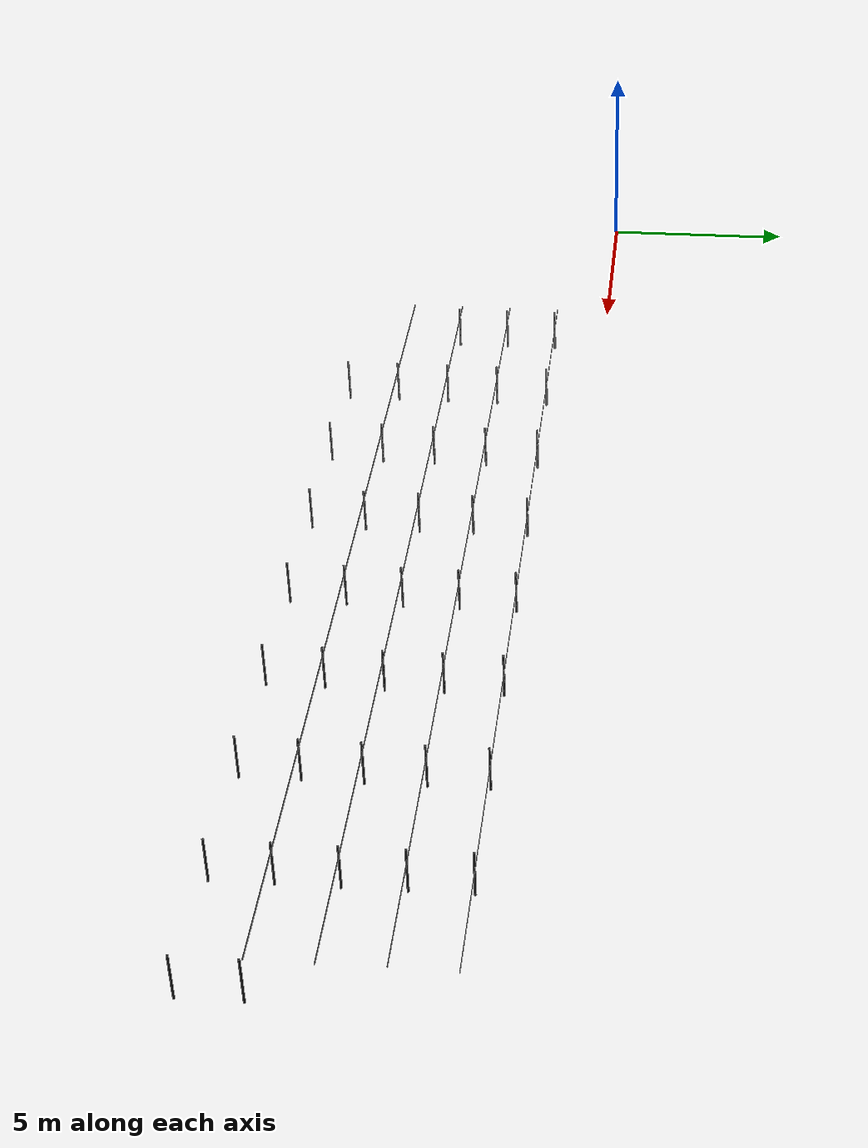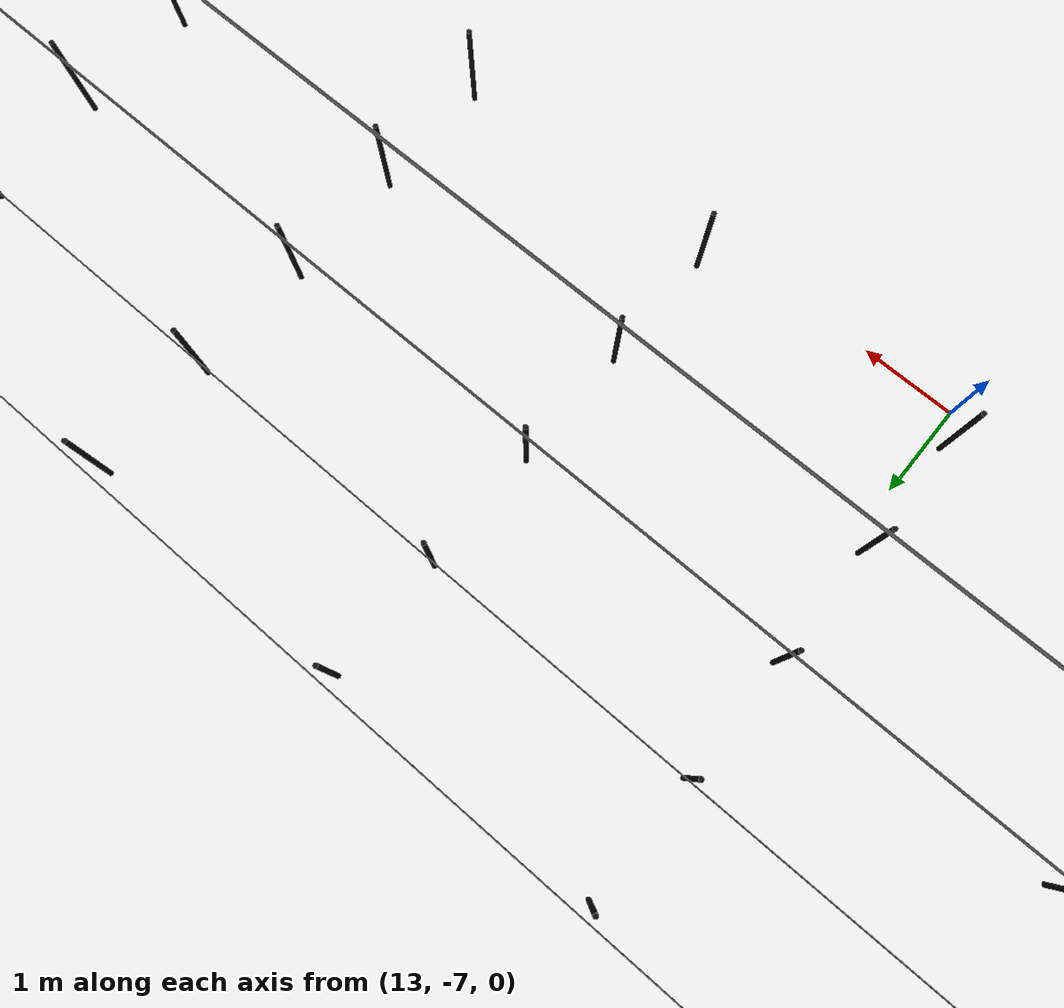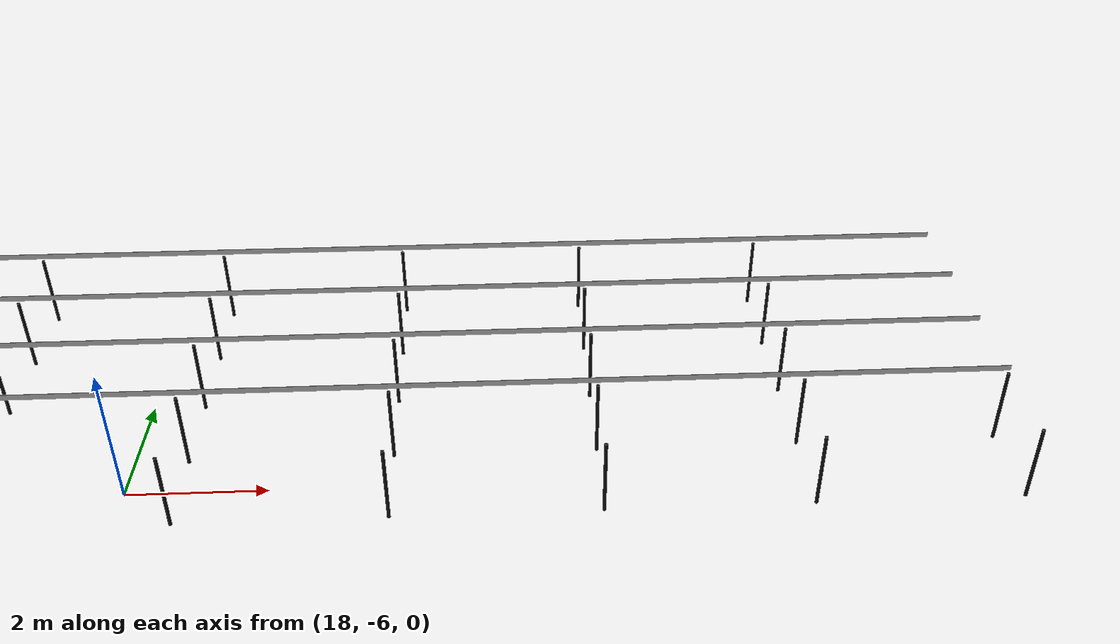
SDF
<sdf version="1.4">
 <world name="riseholme">
  <scene><shadows>1</shadows><sky><clouds><speed>12</speed></clouds></sky></scene>
  <model name="pole_2">
   <static>1</static>
   <pose>7.000 -4.000 0.575 0.0 0.0 0.0</pose>
   <link name="link">
    <collision name="collision">
     <geometry><cylinder><length>1.15</length><radius>0.025</radius></cylinder></geometry>
    </collision>
    <visual name="visual">
     <geometry><cylinder><length>1.15</length><radius>0.025</radius></cylinder></geometry>
     <material>
      <script><uri>file://media/materials/scripts/gazebo.material</uri><name>Gazebo/Chrome</name></script>
      <shader type="vertex"><normal_map>__default__</normal_map></shader>
      <emissive>0.1 0.1 0.1 1</emissive>
      <specular>0.01 0.01 0.01 1</specular>
      <ambient>0.5 0.5 0.5 1</ambient>
      <diffuse>0.05 0.05 0.05 1</diffuse>
     </material>
    </visual>
   </link>
  </model>
  <model name="pole_3">
   <static>1</static>
   <pose>7.000 -2.680 0.575 0.0 0.0 0.0</pose>
   <link name="link">
    <collision name="collision">
     <geometry><cylinder><length>1.15</length><radius>0.025</radius></cylinder></geometry>
    </collision>
    <visual name="visual">
     <geometry><cylinder><length>1.15</length><radius>0.025</radius></cylinder></geometry>
     <material>
      <script><uri>file://media/materials/scripts/gazebo.material</uri><name>Gazebo/Chrome</name></script>
      <shader type="vertex"><normal_map>__default__</normal_map></shader>
      <emissive>0.1 0.1 0.1 1</emissive>
      <specular>0.01 0.01 0.01 1</specular>
      <ambient>0.5 0.5 0.5 1</ambient>
      <diffuse>0.05 0.05 0.05 1</diffuse>
     </material>
    </visual>
   </link>
  </model>
  <model name="pole_4">
   <static>1</static>
   <pose>7.000 -1.360 0.575 0.0 0.0 0.0</pose>
   <link name="link">
    <collision name="collision">
     <geometry><cylinder><length>1.15</length><radius>0.025</radius></cylinder></geometry>
    </collision>
    <visual name="visual">
     <geometry><cylinder><length>1.15</length><radius>0.025</radius></cylinder></geometry>
     <material>
      <script><uri>file://media/materials/scripts/gazebo.material</uri><name>Gazebo/Chrome</name></script>
      <shader type="vertex"><normal_map>__default__</normal_map></shader>
      <emissive>0.1 0.1 0.1 1</emissive>
      <specular>0.01 0.01 0.01 1</specular>
      <ambient>0.5 0.5 0.5 1</ambient>
      <diffuse>0.05 0.05 0.05 1</diffuse>
     </material>
    </visual>
   </link>
  </model>
  <model name="pole_5">
   <static>1</static>
   <pose>9.940 -6.640 0.575 0.0 0.0 0.0</pose>
   <link name="link">
    <collision name="collision">
     <geometry><cylinder><length>1.15</length><radius>0.025</radius></cylinder></geometry>
    </collision>
    <visual name="visual">
     <geometry><cylinder><length>1.15</length><radius>0.025</radius></cylinder></geometry>
     <material>
      <script><uri>file://media/materials/scripts/gazebo.material</uri><name>Gazebo/Chrome</name></script>
      <shader type="vertex"><normal_map>__default__</normal_map></shader>
      <emissive>0.1 0.1 0.1 1</emissive>
      <specular>0.01 0.01 0.01 1</specular>
      <ambient>0.5 0.5 0.5 1</ambient>
      <diffuse>0.05 0.05 0.05 1</diffuse>
     </material>
    </visual>
   </link>
  </model>
  <model name="pole_6">
   <static>1</static>
   <pose>9.940 -5.320 0.575 0.0 0.0 0.0</pose>
   <link name="link">
    <collision name="collision">
     <geometry><cylinder><length>1.15</length><radius>0.025</radius></cylinder></geometry>
    </collision>
    <visual name="visual">
     <geometry><cylinder><length>1.15</length><radius>0.025</radius></cylinder></geometry>
     <material>
      <script><uri>file://media/materials/scripts/gazebo.material</uri><name>Gazebo/Chrome</name></script>
      <shader type="vertex"><normal_map>__default__</normal_map></shader>
      <emissive>0.1 0.1 0.1 1</emissive>
      <specular>0.01 0.01 0.01 1</specular>
      <ambient>0.5 0.5 0.5 1</ambient>
      <diffuse>0.05 0.05 0.05 1</diffuse>
     </material>
    </visual>
   </link>
  </model>
  <model name="pole_7">
   <static>1</static>
   <pose>9.940 -4.000 0.575 0.0 0.0 0.0</pose>
   <link name="link">
    <collision name="collision">
     <geometry><cylinder><length>1.15</length><radius>0.025</radius></cylinder></geometry>
    </collision>
    <visual name="visual">
     <geometry><cylinder><length>1.15</length><radius>0.025</radius></cylinder></geometry>
     <material>
      <script><uri>file://media/materials/scripts/gazebo.material</uri><name>Gazebo/Chrome</name></script>
      <shader type="vertex"><normal_map>__default__</normal_map></shader>
      <emissive>0.1 0.1 0.1 1</emissive>
      <specular>0.01 0.01 0.01 1</specular>
      <ambient>0.5 0.5 0.5 1</ambient>
      <diffuse>0.05 0.05 0.05 1</diffuse>
     </material>
    </visual>
   </link>
  </model>
  <model name="pole_8">
   <static>1</static>
   <pose>9.940 -2.680 0.575 0.0 0.0 0.0</pose>
   <link name="link">
    <collision name="collision">
     <geometry><cylinder><length>1.15</length><radius>0.025</radius></cylinder></geometry>
    </collision>
    <visual name="visual">
     <geometry><cylinder><length>1.15</length><radius>0.025</radius></cylinder></geometry>
     <material>
      <script><uri>file://media/materials/scripts/gazebo.material</uri><name>Gazebo/Chrome</name></script>
      <shader type="vertex"><normal_map>__default__</normal_map></shader>
      <emissive>0.1 0.1 0.1 1</emissive>
      <specular>0.01 0.01 0.01 1</specular>
      <ambient>0.5 0.5 0.5 1</ambient>
      <diffuse>0.05 0.05 0.05 1</diffuse>
     </material>
    </visual>
   </link>
  </model>
  <model name="pole_9">
   <static>1</static>
   <pose>9.940 -1.360 0.575 0.0 0.0 0.0</pose>
   <link name="link">
    <collision name="collision">
     <geometry><cylinder><length>1.15</length><radius>0.025</radius></cylinder></geometry>
    </collision>
    <visual name="visual">
     <geometry><cylinder><length>1.15</length><radius>0.025</radius></cylinder></geometry>
     <material>
      <script><uri>file://media/materials/scripts/gazebo.material</uri><name>Gazebo/Chrome</name></script>
      <shader type="vertex"><normal_map>__default__</normal_map></shader>
      <emissive>0.1 0.1 0.1 1</emissive>
      <specular>0.01 0.01 0.01 1</specular>
      <ambient>0.5 0.5 0.5 1</ambient>
      <diffuse>0.05 0.05 0.05 1</diffuse>
     </material>
    </visual>
   </link>
  </model>
  <model name="pole_10">
   <static>1</static>
   <pose>12.880 -6.640 0.575 0.0 0.0 0.0</pose>
   <link name="link">
    <collision name="collision">
     <geometry><cylinder><length>1.15</length><radius>0.025</radius></cylinder></geometry>
    </collision>
    <visual name="visual">
     <geometry><cylinder><length>1.15</length><radius>0.025</radius></cylinder></geometry>
     <material>
      <script><uri>file://media/materials/scripts/gazebo.material</uri><name>Gazebo/Chrome</name></script>
      <shader type="vertex"><normal_map>__default__</normal_map></shader>
      <emissive>0.1 0.1 0.1 1</emissive>
      <specular>0.01 0.01 0.01 1</specular>
      <ambient>0.5 0.5 0.5 1</ambient>
      <diffuse>0.05 0.05 0.05 1</diffuse>
     </material>
    </visual>
   </link>
  </model>
  <model name="pole_11">
   <static>1</static>
   <pose>12.880 -5.320 0.575 0.0 0.0 0.0</pose>
   <link name="link">
    <collision name="collision">
     <geometry><cylinder><length>1.15</length><radius>0.025</radius></cylinder></geometry>
    </collision>
    <visual name="visual">
     <geometry><cylinder><length>1.15</length><radius>0.025</radius></cylinder></geometry>
     <material>
      <script><uri>file://media/materials/scripts/gazebo.material</uri><name>Gazebo/Chrome</name></script>
      <shader type="vertex"><normal_map>__default__</normal_map></shader>
      <emissive>0.1 0.1 0.1 1</emissive>
      <specular>0.01 0.01 0.01 1</specular>
      <ambient>0.5 0.5 0.5 1</ambient>
      <diffuse>0.05 0.05 0.05 1</diffuse>
     </material>
    </visual>
   </link>
  </model>
  <model name="pole_12">
   <static>1</static>
   <pose>12.880 -4.000 0.575 0.0 0.0 0.0</pose>
   <link name="link">
    <collision name="collision">
     <geometry><cylinder><length>1.15</length><radius>0.025</radius></cylinder></geometry>
    </collision>
    <visual name="visual">
     <geometry><cylinder><length>1.15</length><radius>0.025</radius></cylinder></geometry>
     <material>
      <script><uri>file://media/materials/scripts/gazebo.material</uri><name>Gazebo/Chrome</name></script>
      <shader type="vertex"><normal_map>__default__</normal_map></shader>
      <emissive>0.1 0.1 0.1 1</emissive>
      <specular>0.01 0.01 0.01 1</specular>
      <ambient>0.5 0.5 0.5 1</ambient>
      <diffuse>0.05 0.05 0.05 1</diffuse>
     </material>
    </visual>
   </link>
  </model>
  <model name="pole_13">
   <static>1</static>
   <pose>12.880 -2.680 0.575 0.0 0.0 0.0</pose>
   <link name="link">
    <collision name="collision">
     <geometry><cylinder><length>1.15</length><radius>0.025</radius></cylinder></geometry>
    </collision>
    <visual name="visual">
     <geometry><cylinder><length>1.15</length><radius>0.025</radius></cylinder></geometry>
     <material>
      <script><uri>file://media/materials/scripts/gazebo.material</uri><name>Gazebo/Chrome</name></script>
      <shader type="vertex"><normal_map>__default__</normal_map></shader>
      <emissive>0.1 0.1 0.1 1</emissive>
      <specular>0.01 0.01 0.01 1</specular>
      <ambient>0.5 0.5 0.5 1</ambient>
      <diffuse>0.05 0.05 0.05 1</diffuse>
     </material>
    </visual>
   </link>
  </model>
  <model name="pole_14">
   <static>1</static>
   <pose>12.880 -1.360 0.575 0.0 0.0 0.0</pose>
   <link name="link">
    <collision name="collision">
     <geometry><cylinder><length>1.15</length><radius>0.025</radius></cylinder></geometry>
    </collision>
    <visual name="visual">
     <geometry><cylinder><length>1.15</length><radius>0.025</radius></cylinder></geometry>
     <material>
      <script><uri>file://media/materials/scripts/gazebo.material</uri><name>Gazebo/Chrome</name></script>
      <shader type="vertex"><normal_map>__default__</normal_map></shader>
      <emissive>0.1 0.1 0.1 1</emissive>
      <specular>0.01 0.01 0.01 1</specular>
      <ambient>0.5 0.5 0.5 1</ambient>
      <diffuse>0.05 0.05 0.05 1</diffuse>
     </material>
    </visual>
   </link>
  </model>
  <model name="pole_15">
   <static>1</static>
   <pose>15.820 -6.640 0.575 0.0 0.0 0.0</pose>
   <link name="link">
    <collision name="collision">
     <geometry><cylinder><length>1.15</length><radius>0.025</radius></cylinder></geometry>
    </collision>
    <visual name="visual">
     <geometry><cylinder><length>1.15</length><radius>0.025</radius></cylinder></geometry>
     <material>
      <script><uri>file://media/materials/scripts/gazebo.material</uri><name>Gazebo/Chrome</name></script>
      <shader type="vertex"><normal_map>__default__</normal_map></shader>
      <emissive>0.1 0.1 0.1 1</emissive>
      <specular>0.01 0.01 0.01 1</specular>
      <ambient>0.5 0.5 0.5 1</ambient>
      <diffuse>0.05 0.05 0.05 1</diffuse>
     </material>
    </visual>
   </link>
  </model>
  <model name="pole_16">
   <static>1</static>
   <pose>15.820 -5.320 0.575 0.0 0.0 0.0</pose>
   <link name="link">
    <collision name="collision">
     <geometry><cylinder><length>1.15</length><radius>0.025</radius></cylinder></geometry>
    </collision>
    <visual name="visual">
     <geometry><cylinder><length>1.15</length><radius>0.025</radius></cylinder></geometry>
     <material>
      <script><uri>file://media/materials/scripts/gazebo.material</uri><name>Gazebo/Chrome</name></script>
      <shader type="vertex"><normal_map>__default__</normal_map></shader>
      <emissive>0.1 0.1 0.1 1</emissive>
      <specular>0.01 0.01 0.01 1</specular>
      <ambient>0.5 0.5 0.5 1</ambient>
      <diffuse>0.05 0.05 0.05 1</diffuse>
     </material>
    </visual>
   </link>
  </model>
  <model name="pole_17">
   <static>1</static>
   <pose>15.820 -4.000 0.575 0.0 0.0 0.0</pose>
   <link name="link">
    <collision name="collision">
     <geometry><cylinder><length>1.15</length><radius>0.025</radius></cylinder></geometry>
    </collision>
    <visual name="visual">
     <geometry><cylinder><length>1.15</length><radius>0.025</radius></cylinder></geometry>
     <material>
      <script><uri>file://media/materials/scripts/gazebo.material</uri><name>Gazebo/Chrome</name></script>
      <shader type="vertex"><normal_map>__default__</normal_map></shader>
      <emissive>0.1 0.1 0.1 1</emissive>
      <specular>0.01 0.01 0.01 1</specular>
      <ambient>0.5 0.5 0.5 1</ambient>
      <diffuse>0.05 0.05 0.05 1</diffuse>
     </material>
    </visual>
   </link>
  </model>
  <model name="pole_18">
   <static>1</static>
   <pose>15.820 -2.680 0.575 0.0 0.0 0.0</pose>
   <link name="link">
    <collision name="collision">
     <geometry><cylinder><length>1.15</length><radius>0.025</radius></cylinder></geometry>
    </collision>
    <visual name="visual">
     <geometry><cylinder><length>1.15</length><radius>0.025</radius></cylinder></geometry>
     <material>
      <script><uri>file://media/materials/scripts/gazebo.material</uri><name>Gazebo/Chrome</name></script>
      <shader type="vertex"><normal_map>__default__</normal_map></shader>
      <emissive>0.1 0.1 0.1 1</emissive>
      <specular>0.01 0.01 0.01 1</specular>
      <ambient>0.5 0.5 0.5 1</ambient>
      <diffuse>0.05 0.05 0.05 1</diffuse>
     </material>
    </visual>
   </link>
  </model>
  <model name="pole_19">
   <static>1</static>
   <pose>15.820 -1.360 0.575 0.0 0.0 0.0</pose>
   <link name="link">
    <collision name="collision">
     <geometry><cylinder><length>1.15</length><radius>0.025</radius></cylinder></geometry>
    </collision>
    <visual name="visual">
     <geometry><cylinder><length>1.15</length><radius>0.025</radius></cylinder></geometry>
     <material>
      <script><uri>file://media/materials/scripts/gazebo.material</uri><name>Gazebo/Chrome</name></script>
      <shader type="vertex"><normal_map>__default__</normal_map></shader>
      <emissive>0.1 0.1 0.1 1</emissive>
      <specular>0.01 0.01 0.01 1</specular>
      <ambient>0.5 0.5 0.5 1</ambient>
      <diffuse>0.05 0.05 0.05 1</diffuse>
     </material>
    </visual>
   </link>
  </model>
  <model name="pole_20">
   <static>1</static>
   <pose>18.760 -6.640 0.575 0.0 0.0 0.0</pose>
   <link name="link">
    <collision name="collision">
     <geometry><cylinder><length>1.15</length><radius>0.025</radius></cylinder></geometry>
    </collision>
    <visual name="visual">
     <geometry><cylinder><length>1.15</length><radius>0.025</radius></cylinder></geometry>
     <material>
      <script><uri>file://media/materials/scripts/gazebo.material</uri><name>Gazebo/Chrome</name></script>
      <shader type="vertex"><normal_map>__default__</normal_map></shader>
      <emissive>0.1 0.1 0.1 1</emissive>
      <specular>0.01 0.01 0.01 1</specular>
      <ambient>0.5 0.5 0.5 1</ambient>
      <diffuse>0.05 0.05 0.05 1</diffuse>
     </material>
    </visual>
   </link>
  </model>
  <model name="pole_21">
   <static>1</static>
   <pose>18.760 -5.320 0.575 0.0 0.0 0.0</pose>
   <link name="link">
    <collision name="collision">
     <geometry><cylinder><length>1.15</length><radius>0.025</radius></cylinder></geometry>
    </collision>
    <visual name="visual">
     <geometry><cylinder><length>1.15</length><radius>0.025</radius></cylinder></geometry>
     <material>
      <script><uri>file://media/materials/scripts/gazebo.material</uri><name>Gazebo/Chrome</name></script>
      <shader type="vertex"><normal_map>__default__</normal_map></shader>
      <emissive>0.1 0.1 0.1 1</emissive>
      <specular>0.01 0.01 0.01 1</specular>
      <ambient>0.5 0.5 0.5 1</ambient>
      <diffuse>0.05 0.05 0.05 1</diffuse>
     </material>
    </visual>
   </link>
  </model>
  <model name="pole_22">
   <static>1</static>
   <pose>18.760 -4.000 0.575 0.0 0.0 0.0</pose>
   <link name="link">
    <collision name="collision">
     <geometry><cylinder><length>1.15</length><radius>0.025</radius></cylinder></geometry>
    </collision>
    <visual name="visual">
     <geometry><cylinder><length>1.15</length><radius>0.025</radius></cylinder></geometry>
     <material>
      <script><uri>file://media/materials/scripts/gazebo.material</uri><name>Gazebo/Chrome</name></script>
      <shader type="vertex"><normal_map>__default__</normal_map></shader>
      <emissive>0.1 0.1 0.1 1</emissive>
      <specular>0.01 0.01 0.01 1</specular>
      <ambient>0.5 0.5 0.5 1</ambient>
      <diffuse>0.05 0.05 0.05 1</diffuse>
     </material>
    </visual>
   </link>
  </model>
  <model name="pole_23">
   <static>1</static>
   <pose>18.760 -2.680 0.575 0.0 0.0 0.0</pose>
   <link name="link">
    <collision name="collision">
     <geometry><cylinder><length>1.15</length><radius>0.025</radius></cylinder></geometry>
    </collision>
    <visual name="visual">
     <geometry><cylinder><length>1.15</length><radius>0.025</radius></cylinder></geometry>
     <material>
      <script><uri>file://media/materials/scripts/gazebo.material</uri><name>Gazebo/Chrome</name></script>
      <shader type="vertex"><normal_map>__default__</normal_map></shader>
      <emissive>0.1 0.1 0.1 1</emissive>
      <specular>0.01 0.01 0.01 1</specular>
      <ambient>0.5 0.5 0.5 1</ambient>
      <diffuse>0.05 0.05 0.05 1</diffuse>
     </material>
    </visual>
   </link>
  </model>
  <model name="pole_24">
   <static>1</static>
   <pose>18.760 -1.360 0.575 0.0 0.0 0.0</pose>
   <link name="link">
    <collision name="collision">
     <geometry><cylinder><length>1.15</length><radius>0.025</radius></cylinder></geometry>
    </collision>
    <visual name="visual">
     <geometry><cylinder><length>1.15</length><radius>0.025</radius></cylinder></geometry>
     <material>
      <script><uri>file://media/materials/scripts/gazebo.material</uri><name>Gazebo/Chrome</name></script>
      <shader type="vertex"><normal_map>__default__</normal_map></shader>
      <emissive>0.1 0.1 0.1 1</emissive>
      <specular>0.01 0.01 0.01 1</specular>
      <ambient>0.5 0.5 0.5 1</ambient>
      <diffuse>0.05 0.05 0.05 1</diffuse>
     </material>
    </visual>
   </link>
  </model>
  <model name="pole_25">
   <static>1</static>
   <pose>21.700 -6.640 0.575 0.0 0.0 0.0</pose>
   <link name="link">
    <collision name="collision">
     <geometry><cylinder><length>1.15</length><radius>0.025</radius></cylinder></geometry>
    </collision>
    <visual name="visual">
     <geometry><cylinder><length>1.15</length><radius>0.025</radius></cylinder></geometry>
     <material>
      <script><uri>file://media/materials/scripts/gazebo.material</uri><name>Gazebo/Chrome</name></script>
      <shader type="vertex"><normal_map>__default__</normal_map></shader>
      <emissive>0.1 0.1 0.1 1</emissive>
      <specular>0.01 0.01 0.01 1</specular>
      <ambient>0.5 0.5 0.5 1</ambient>
      <diffuse>0.05 0.05 0.05 1</diffuse>
     </material>
    </visual>
   </link>
  </model>
  <model name="pole_26">
   <static>1</static>
   <pose>21.700 -5.320 0.575 0.0 0.0 0.0</pose>
   <link name="link">
    <collision name="collision">
     <geometry><cylinder><length>1.15</length><radius>0.025</radius></cylinder></geometry>
    </collision>
    <visual name="visual">
     <geometry><cylinder><length>1.15</length><radius>0.025</radius></cylinder></geometry>
     <material>
      <script><uri>file://media/materials/scripts/gazebo.material</uri><name>Gazebo/Chrome</name></script>
      <shader type="vertex"><normal_map>__default__</normal_map></shader>
      <emissive>0.1 0.1 0.1 1</emissive>
      <specular>0.01 0.01 0.01 1</specular>
      <ambient>0.5 0.5 0.5 1</ambient>
      <diffuse>0.05 0.05 0.05 1</diffuse>
     </material>
    </visual>
   </link>
  </model>
  <model name="pole_27">
   <static>1</static>
   <pose>21.700 -4.000 0.575 0.0 0.0 0.0</pose>
   <link name="link">
    <collision name="collision">
     <geometry><cylinder><length>1.15</length><radius>0.025</radius></cylinder></geometry>
    </collision>
    <visual name="visual">
     <geometry><cylinder><length>1.15</length><radius>0.025</radius></cylinder></geometry>
     <material>
      <script><uri>file://media/materials/scripts/gazebo.material</uri><name>Gazebo/Chrome</name></script>
      <shader type="vertex"><normal_map>__default__</normal_map></shader>
      <emissive>0.1 0.1 0.1 1</emissive>
      <specular>0.01 0.01 0.01 1</specular>
      <ambient>0.5 0.5 0.5 1</ambient>
      <diffuse>0.05 0.05 0.05 1</diffuse>
     </material>
    </visual>
   </link>
  </model>
  <model name="pole_28">
   <static>1</static>
   <pose>21.700 -2.680 0.575 0.0 0.0 0.0</pose>
   <link name="link">
    <collision name="collision">
     <geometry><cylinder><length>1.15</length><radius>0.025</radius></cylinder></geometry>
    </collision>
    <visual name="visual">
     <geometry><cylinder><length>1.15</length><radius>0.025</radius></cylinder></geometry>
     <material>
      <script><uri>file://media/materials/scripts/gazebo.material</uri><name>Gazebo/Chrome</name></script>
      <shader type="vertex"><normal_map>__default__</normal_map></shader>
      <emissive>0.1 0.1 0.1 1</emissive>
      <specular>0.01 0.01 0.01 1</specular>
      <ambient>0.5 0.5 0.5 1</ambient>
      <diffuse>0.05 0.05 0.05 1</diffuse>
     </material>
    </visual>
   </link>
  </model>
  <model name="pole_29">
   <static>1</static>
   <pose>21.700 -1.360 0.575 0.0 0.0 0.0</pose>
   <link name="link">
    <collision name="collision">
     <geometry><cylinder><length>1.15</length><radius>0.025</radius></cylinder></geometry>
    </collision>
    <visual name="visual">
     <geometry><cylinder><length>1.15</length><radius>0.025</radius></cylinder></geometry>
     <material>
      <script><uri>file://media/materials/scripts/gazebo.material</uri><name>Gazebo/Chrome</name></script>
      <shader type="vertex"><normal_map>__default__</normal_map></shader>
      <emissive>0.1 0.1 0.1 1</emissive>
      <specular>0.01 0.01 0.01 1</specular>
      <ambient>0.5 0.5 0.5 1</ambient>
      <diffuse>0.05 0.05 0.05 1</diffuse>
     </material>
    </visual>
   </link>
  </model>
  <model name="pole_30">
   <static>1</static>
   <pose>24.640 -6.640 0.575 0.0 0.0 0.0</pose>
   <link name="link">
    <collision name="collision">
     <geometry><cylinder><length>1.15</length><radius>0.025</radius></cylinder></geometry>
    </collision>
    <visual name="visual">
     <geometry><cylinder><length>1.15</length><radius>0.025</radius></cylinder></geometry>
     <material>
      <script><uri>file://media/materials/scripts/gazebo.material</uri><name>Gazebo/Chrome</name></script>
      <shader type="vertex"><normal_map>__default__</normal_map></shader>
      <emissive>0.1 0.1 0.1 1</emissive>
      <specular>0.01 0.01 0.01 1</specular>
      <ambient>0.5 0.5 0.5 1</ambient>
      <diffuse>0.05 0.05 0.05 1</diffuse>
     </material>
    </visual>
   </link>
  </model>
  <model name="pole_31">
   <static>1</static>
   <pose>24.640 -5.320 0.575 0.0 0.0 0.0</pose>
   <link name="link">
    <collision name="collision">
     <geometry><cylinder><length>1.15</length><radius>0.025</radius></cylinder></geometry>
    </collision>
    <visual name="visual">
     <geometry><cylinder><length>1.15</length><radius>0.025</radius></cylinder></geometry>
     <material>
      <script><uri>file://media/materials/scripts/gazebo.material</uri><name>Gazebo/Chrome</name></script>
      <shader type="vertex"><normal_map>__default__</normal_map></shader>
      <emissive>0.1 0.1 0.1 1</emissive>
      <specular>0.01 0.01 0.01 1</specular>
      <ambient>0.5 0.5 0.5 1</ambient>
      <diffuse>0.05 0.05 0.05 1</diffuse>
     </material>
    </visual>
   </link>
  </model>
  <model name="pole_32">
   <static>1</static>
   <pose>24.640 -4.000 0.575 0.0 0.0 0.0</pose>
   <link name="link">
    <collision name="collision">
     <geometry><cylinder><length>1.15</length><radius>0.025</radius></cylinder></geometry>
    </collision>
    <visual name="visual">
     <geometry><cylinder><length>1.15</length><radius>0.025</radius></cylinder></geometry>
     <material>
      <script><uri>file://media/materials/scripts/gazebo.material</uri><name>Gazebo/Chrome</name></script>
      <shader type="vertex"><normal_map>__default__</normal_map></shader>
      <emissive>0.1 0.1 0.1 1</emissive>
      <specular>0.01 0.01 0.01 1</specular>
      <ambient>0.5 0.5 0.5 1</ambient>
      <diffuse>0.05 0.05 0.05 1</diffuse>
     </material>
    </visual>
   </link>
  </model>
  <model name="pole_33">
   <static>1</static>
   <pose>24.640 -2.680 0.575 0.0 0.0 0.0</pose>
   <link name="link">
    <collision name="collision">
     <geometry><cylinder><length>1.15</length><radius>0.025</radius></cylinder></geometry>
    </collision>
    <visual name="visual">
     <geometry><cylinder><length>1.15</length><radius>0.025</radius></cylinder></geometry>
     <material>
      <script><uri>file://media/materials/scripts/gazebo.material</uri><name>Gazebo/Chrome</name></script>
      <shader type="vertex"><normal_map>__default__</normal_map></shader>
      <emissive>0.1 0.1 0.1 1</emissive>
      <specular>0.01 0.01 0.01 1</specular>
      <ambient>0.5 0.5 0.5 1</ambient>
      <diffuse>0.05 0.05 0.05 1</diffuse>
     </material>
    </visual>
   </link>
  </model>
  <model name="pole_34">
   <static>1</static>
   <pose>24.640 -1.360 0.575 0.0 0.0 0.0</pose>
   <link name="link">
    <collision name="collision">
     <geometry><cylinder><length>1.15</length><radius>0.025</radius></cylinder></geometry>
    </collision>
    <visual name="visual">
     <geometry><cylinder><length>1.15</length><radius>0.025</radius></cylinder></geometry>
     <material>
      <script><uri>file://media/materials/scripts/gazebo.material</uri><name>Gazebo/Chrome</name></script>
      <shader type="vertex"><normal_map>__default__</normal_map></shader>
      <emissive>0.1 0.1 0.1 1</emissive>
      <specular>0.01 0.01 0.01 1</specular>
      <ambient>0.5 0.5 0.5 1</ambient>
      <diffuse>0.05 0.05 0.05 1</diffuse>
     </material>
    </visual>
   </link>
  </model>
  <model name="pole_35">
   <static>1</static>
   <pose>27.580 -6.640 0.575 0.0 0.0 0.0</pose>
   <link name="link">
    <collision name="collision">
     <geometry><cylinder><length>1.15</length><radius>0.025</radius></cylinder></geometry>
    </collision>
    <visual name="visual">
     <geometry><cylinder><length>1.15</length><radius>0.025</radius></cylinder></geometry>
     <material>
      <script><uri>file://media/materials/scripts/gazebo.material</uri><name>Gazebo/Chrome</name></script>
      <shader type="vertex"><normal_map>__default__</normal_map></shader>
      <emissive>0.1 0.1 0.1 1</emissive>
      <specular>0.01 0.01 0.01 1</specular>
      <ambient>0.5 0.5 0.5 1</ambient>
      <diffuse>0.05 0.05 0.05 1</diffuse>
     </material>
    </visual>
   </link>
  </model>
  <model name="pole_36">
   <static>1</static>
   <pose>27.580 -5.320 0.575 0.0 0.0 0.0</pose>
   <link name="link">
    <collision name="collision">
     <geometry><cylinder><length>1.15</length><radius>0.025</radius></cylinder></geometry>
    </collision>
    <visual name="visual">
     <geometry><cylinder><length>1.15</length><radius>0.025</radius></cylinder></geometry>
     <material>
      <script><uri>file://media/materials/scripts/gazebo.material</uri><name>Gazebo/Chrome</name></script>
      <shader type="vertex"><normal_map>__default__</normal_map></shader>
      <emissive>0.1 0.1 0.1 1</emissive>
      <specular>0.01 0.01 0.01 1</specular>
      <ambient>0.5 0.5 0.5 1</ambient>
      <diffuse>0.05 0.05 0.05 1</diffuse>
     </material>
    </visual>
   </link>
  </model>
  <model name="pole_37">
   <static>1</static>
   <pose>27.580 -4.000 0.575 0.0 0.0 0.0</pose>
   <link name="link">
    <collision name="collision">
     <geometry><cylinder><length>1.15</length><radius>0.025</radius></cylinder></geometry>
    </collision>
    <visual name="visual">
     <geometry><cylinder><length>1.15</length><radius>0.025</radius></cylinder></geometry>
     <material>
      <script><uri>file://media/materials/scripts/gazebo.material</uri><name>Gazebo/Chrome</name></script>
      <shader type="vertex"><normal_map>__default__</normal_map></shader>
      <emissive>0.1 0.1 0.1 1</emissive>
      <specular>0.01 0.01 0.01 1</specular>
      <ambient>0.5 0.5 0.5 1</ambient>
      <diffuse>0.05 0.05 0.05 1</diffuse>
     </material>
    </visual>
   </link>
  </model>
  <model name="pole_38">
   <static>1</static>
   <pose>27.580 -2.680 0.575 0.0 0.0 0.0</pose>
   <link name="link">
    <collision name="collision">
     <geometry><cylinder><length>1.15</length><radius>0.025</radius></cylinder></geometry>
    </collision>
    <visual name="visual">
     <geometry><cylinder><length>1.15</length><radius>0.025</radius></cylinder></geometry>
     <material>
      <script><uri>file://media/materials/scripts/gazebo.material</uri><name>Gazebo/Chrome</name></script>
      <shader type="vertex"><normal_map>__default__</normal_map></shader>
      <emissive>0.1 0.1 0.1 1</emissive>
      <specular>0.01 0.01 0.01 1</specular>
      <ambient>0.5 0.5 0.5 1</ambient>
      <diffuse>0.05 0.05 0.05 1</diffuse>
     </material>
    </visual>
   </link>
  </model>
  <model name="pole_39">
   <static>1</static>
   <pose>27.580 -1.360 0.575 0.0 0.0 0.0</pose>
   <link name="link">
    <collision name="collision">
     <geometry><cylinder><length>1.15</length><radius>0.025</radius></cylinder></geometry>
    </collision>
    <visual name="visual">
     <geometry><cylinder><length>1.15</length><radius>0.025</radius></cylinder></geometry>
     <material>
      <script><uri>file://media/materials/scripts/gazebo.material</uri><name>Gazebo/Chrome</name></script>
      <shader type="vertex"><normal_map>__default__</normal_map></shader>
      <emissive>0.1 0.1 0.1 1</emissive>
      <specular>0.01 0.01 0.01 1</specular>
      <ambient>0.5 0.5 0.5 1</ambient>
      <diffuse>0.05 0.05 0.05 1</diffuse>
     </material>
    </visual>
   </link>
  </model>
  <model name="pole_40">
   <static>1</static>
   <pose>30.520 -6.640 0.575 0.0 0.0 0.0</pose>
   <link name="link">
    <collision name="collision">
     <geometry><cylinder><length>1.15</length><radius>0.025</radius></cylinder></geometry>
    </collision>
    <visual name="visual">
     <geometry><cylinder><length>1.15</length><radius>0.025</radius></cylinder></geometry>
     <material>
      <script><uri>file://media/materials/scripts/gazebo.material</uri><name>Gazebo/Chrome</name></script>
      <shader type="vertex"><normal_map>__default__</normal_map></shader>
      <emissive>0.1 0.1 0.1 1</emissive>
      <specular>0.01 0.01 0.01 1</specular>
      <ambient>0.5 0.5 0.5 1</ambient>
      <diffuse>0.05 0.05 0.05 1</diffuse>
     </material>
    </visual>
   </link>
  </model>
  <model name="pole_41">
   <static>1</static>
   <pose>30.520 -5.320 0.575 0.0 0.0 0.0</pose>
   <link name="link">
    <collision name="collision">
     <geometry><cylinder><length>1.15</length><radius>0.025</radius></cylinder></geometry>
    </collision>
    <visual name="visual">
     <geometry><cylinder><length>1.15</length><radius>0.025</radius></cylinder></geometry>
     <material>
      <script><uri>file://media/materials/scripts/gazebo.material</uri><name>Gazebo/Chrome</name></script>
      <shader type="vertex"><normal_map>__default__</normal_map></shader>
      <emissive>0.1 0.1 0.1 1</emissive>
      <specular>0.01 0.01 0.01 1</specular>
      <ambient>0.5 0.5 0.5 1</ambient>
      <diffuse>0.05 0.05 0.05 1</diffuse>
     </material>
    </visual>
   </link>
  </model>
  <model name="tray_p2_6">
   <static>1</static>
   <link name="link_0">
    <collision name="collision"><geometry><box><size>23.62 0.085 0.005</size></box></geometry></collision>
    <visual name="visual">
     <geometry><box><size>23.62 0.085 0.005</size></box></geometry>
     <material>
      <script><uri>file://media/materials/scripts/gazebo.material</uri><name>Gazebo/Grey</name></script>
      <emissive>0 0 0 1</emissive>
      <shader type="vertex"><normal_map>__default__</normal_map></shader>
      <specular>0.01 0.01 0.01 1</specular>
      <lighting>1</lighting>
      <ambient>0.7 0.7 0.7 1</ambient>
      <diffuse>0.3 0.3 0.3 1</diffuse>
     </material>
    </visual>
    <pose>18.760 -5.245 1.19165 1.5707 0.0 0.0</pose>
   </link>
  </model>
  <model name="tray_p2_7">
   <static>1</static>
   <link name="link_0">
    <collision name="collision"><geometry><box><size>23.62 0.085 0.005</size></box></geometry></collision>
    <visual name="visual">
     <geometry><box><size>23.62 0.085 0.005</size></box></geometry>
     <material>
      <script><uri>file://media/materials/scripts/gazebo.material</uri><name>Gazebo/Grey</name></script>
      <emissive>0 0 0 1</emissive>
      <shader type="vertex"><normal_map>__default__</normal_map></shader>
      <specular>0.01 0.01 0.01 1</specular>
      <lighting>1</lighting>
      <ambient>0.7 0.7 0.7 1</ambient>
      <diffuse>0.3 0.3 0.3 1</diffuse>
     </material>
    </visual>
    <pose>18.760 -3.925 1.19165 1.5707 0.0 0.0</pose>
   </link>
  </model>
  <model name="tray_p2_8">
   <static>1</static>
   <link name="link_0">
    <collision name="collision"><geometry><box><size>23.62 0.085 0.005</size></box></geometry></collision>
    <visual name="visual">
     <geometry><box><size>23.62 0.085 0.005</size></box></geometry>
     <material>
      <script><uri>file://media/materials/scripts/gazebo.material</uri><name>Gazebo/Grey</name></script>
      <emissive>0 0 0 1</emissive>
      <shader type="vertex"><normal_map>__default__</normal_map></shader>
      <specular>0.01 0.01 0.01 1</specular>
      <lighting>1</lighting>
      <ambient>0.7 0.7 0.7 1</ambient>
      <diffuse>0.3 0.3 0.3 1</diffuse>
     </material>
    </visual>
    <pose>18.760 -2.605 1.19165 1.5707 0.0 0.0</pose>
   </link>
  </model>
  <model name="tray_p2_9">
   <static>1</static>
   <link name="link_0">
    <collision name="collision"><geometry><box><size>23.62 0.085 0.005</size></box></geometry></collision>
    <visual name="visual">
     <geometry><box><size>23.62 0.085 0.005</size></box></geometry>
     <material>
      <script><uri>file://media/materials/scripts/gazebo.material</uri><name>Gazebo/Grey</name></script>
      <emissive>0 0 0 1</emissive>
      <shader type="vertex"><normal_map>__default__</normal_map></shader>
      <specular>0.01 0.01 0.01 1</specular>
      <lighting>1</lighting>
      <ambient>0.7 0.7 0.7 1</ambient>
      <diffuse>0.3 0.3 0.3 1</diffuse>
     </material>
    </visual>
    <pose>18.760 -1.285 1.19165 1.5707 0.0 0.0</pose>
   </link>
  </model>
  <include><uri>model://sun</uri></include>
  <physics type="ode">
   <real_time_update_rate>200</real_time_update_rate>
   <real_time_factor>1</real_time_factor>
   <max_step_size>0.005</max_step_size>
   <gravity>0 0 -9.8</gravity>
  </physics>
 </world>
</sdf>
